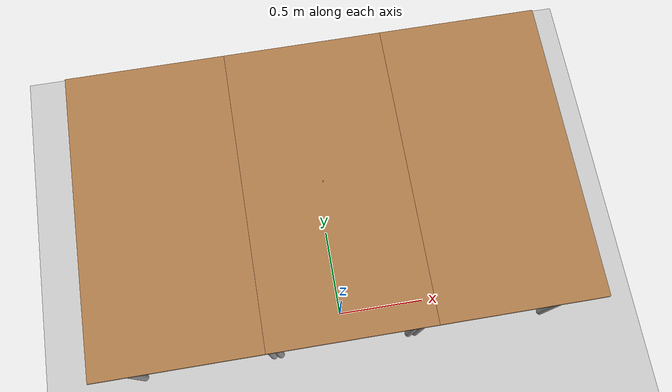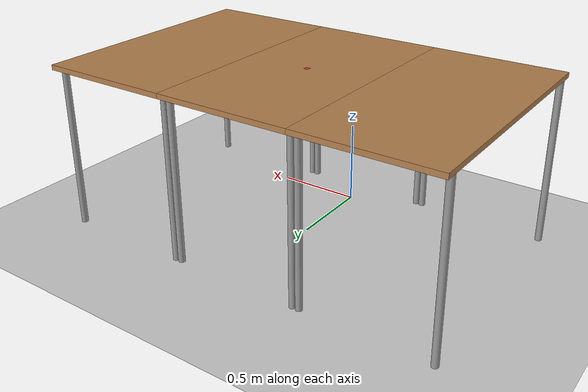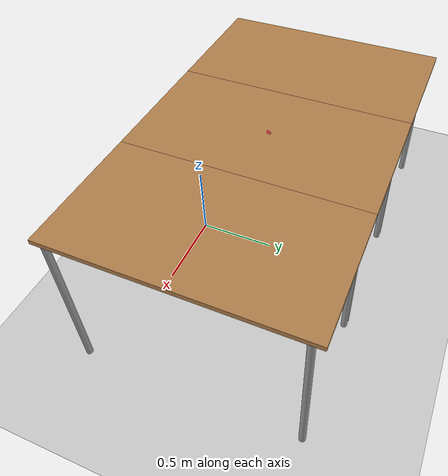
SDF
<?xml version="1.0" ?>
<sdf version="1.6">
  <world name="workstation">
    <scene>
      <shadows>0</shadows>
    </scene>

    <gui>
      <camera name="user_camera">
        <pose>0.75 -0.75 1.4 0 0.29 2.21</pose>
      </camera>
    </gui>

    <include>
      <uri>model://sun</uri>
    </include>

    <model name="table1">
      <static>true</static>
      <include>
        <uri>model://table</uri>
      </include>
      <pose>-0.8 0.5 0 0 0 1.5708</pose>
    </model>

    <model name="table2">
      <static>true</static>
      <include>
        <uri>model://table</uri>
      </include>
      <pose>0 0.5 0 0 0 1.5708</pose>
    </model>

    <model name="table3">
      <static>true</static>
      <include>
        <uri>model://table</uri>
      </include>
      <pose>0.8 0.5 0 0 0 1.5708</pose>
    </model>

    <model name="cube">
      <pose>0 0.5 1.0 0 0 0</pose> <!-- Positioned on table2 -->
      <link name="link">
        <inertial>
          <mass>0.5</mass>
          <inertia>
            <ixx>0.0005</ixx>
            <iyy>0.0005</iyy>
            <izz>0.0005</izz>
            <ixy>0.0</ixy>
            <ixz>0.0</ixz>
            <iyz>0.0</iyz>
          </inertia>
        </inertial>
        <collision name="collision">
          <geometry>
            <box>
              <size>0.03 0.03 0.03</size>
            </box>
          </geometry>
          <surface>
            <contact>
              <ode/>
            </contact>
          </surface>
        </collision>
        <visual name="visual">
          <geometry>
            <box>
              <size>0.03 0.03 0.03</size>
            </box>
          </geometry>
          <material>
            <ambient>0.8 0.2 0.2 1</ambient>
            <diffuse>0.8 0.2 0.2 1</diffuse>
            <specular>0.8 0.2 0.2 1</specular>
          </material>
        </visual>
      </link>
    </model>

    <model name="ground_plane">
      <static>true</static>
      <include>
        <uri>model://ground_plane</uri>
      </include>
    </model>
  </world>
</sdf>

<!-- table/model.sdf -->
<sdf version="1.5">
  <model name="table">
    <static>true</static>
    <link name="link">
      <collision name="surface">
        <pose>0 0 1.0 0 0 0</pose>
        <geometry>
          <box>
            <size>1.5 0.8 0.03</size>
          </box>
        </geometry>
        <surface>
          <friction>
            <ode>
              <mu>0.6</mu>
              <mu2>0.6</mu2>
            </ode>
          </friction>
        </surface>
      </collision>
      <visual name="visual1">
        <pose>0 0 1.0 0 0 0</pose>
        <geometry>
          <box>
            <size>1.5 0.8 0.03</size>
          </box>
        </geometry>
        <material>
          <script>
            <uri>model://media/materials/scripts/gazebo.material</uri>
            <name>Gazebo/Wood</name>
          </script>
        </material>
      </visual>
      <collision name="front_left_leg">
        <pose>0.68 0.38 0.5 0 0 0</pose>
        <geometry>
          <cylinder>
            <radius>0.02</radius>
            <length>1.0</length>
          </cylinder>
        </geometry>
      </collision>
      <visual name="front_left_leg">
        <pose>0.68 0.38 0.5 0 0 0</pose>
        <geometry>
          <cylinder>
            <radius>0.02</radius>
            <length>1.0</length>
          </cylinder>
        </geometry>
        <material>
          <script>
            <uri>model://media/materials/scripts/gazebo.material</uri>
            <name>Gazebo/Grey</name>
          </script>
        </material>
      </visual>
      <collision name="front_right_leg">
        <pose>0.68 -0.38 0.5 0 0 0</pose>
        <geometry>
          <cylinder>
            <radius>0.02</radius>
            <length>1.0</length>
          </cylinder>
        </geometry>
      </collision>
      <visual name="front_right_leg">
        <pose>0.68 -0.38 0.5 0 0 0</pose>
        <geometry>
          <cylinder>
            <radius>0.02</radius>
            <length>1.0</length>
          </cylinder>
        </geometry>
        <material>
          <script>
            <uri>model://media/materials/scripts/gazebo.material</uri>
            <name>Gazebo/Grey</name>
          </script>
        </material>
      </visual>
      <collision name="back_right_leg">
        <pose>-0.68 -0.38 0.5 0 0 0</pose>
        <geometry>
          <cylinder>
            <radius>0.02</radius>
            <length>1.0</length>
          </cylinder>
        </geometry>
      </collision>
      <visual name="back_right_leg">
        <pose>-0.68 -0.38 0.5 0 0 0</pose>
        <geometry>
          <cylinder>
            <radius>0.02</radius>
            <length>1.0</length>
          </cylinder>
        </geometry>
        <material>
          <script>
            <uri>model://media/materials/scripts/gazebo.material</uri>
            <name>Gazebo/Grey</name>
          </script>
        </material>
      </visual>
      <collision name="back_left_leg">
        <pose>-0.68 0.38 0.5 0 0 0</pose>
        <geometry>
          <cylinder>
            <radius>0.02</radius>
            <length>1.0</length>
          </cylinder>
        </geometry>
      </collision>
      <visual name="back_left_leg">
        <pose>-0.68 0.38 0.5 0 0 0</pose>
        <geometry>
          <cylinder>
            <radius>0.02</radius>
            <length>1.0</length>
          </cylinder>
        </geometry>
        <material>
          <script>
            <uri>model://media/materials/scripts/gazebo.material</uri>
            <name>Gazebo/Grey</name>
          </script>
        </material>
      </visual>
    </link>
  </model>
</sdf>
